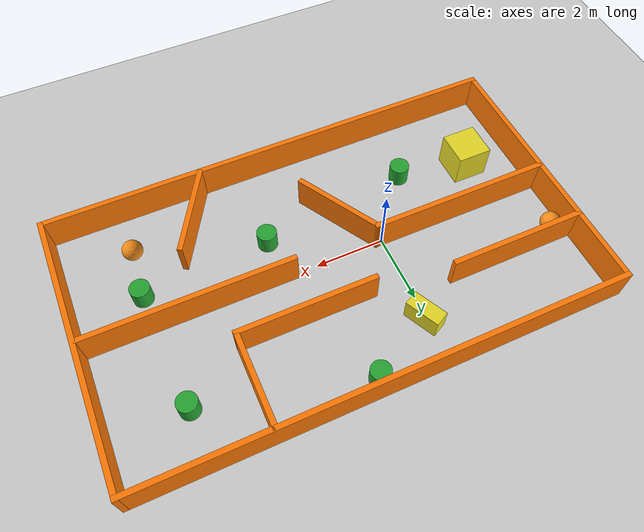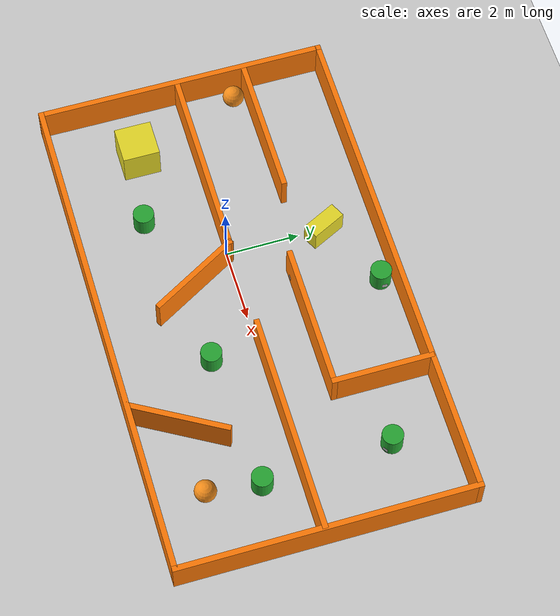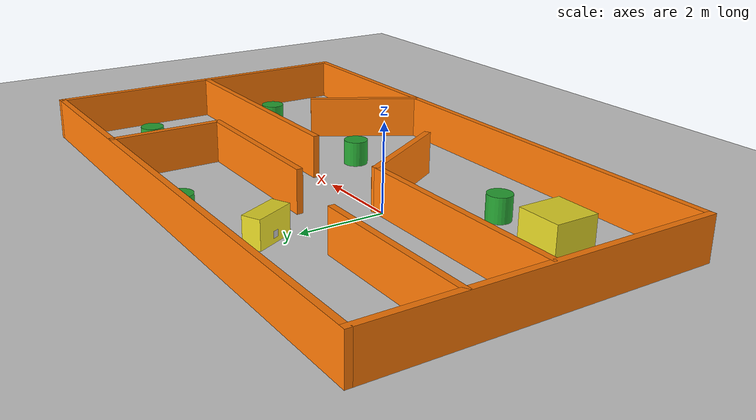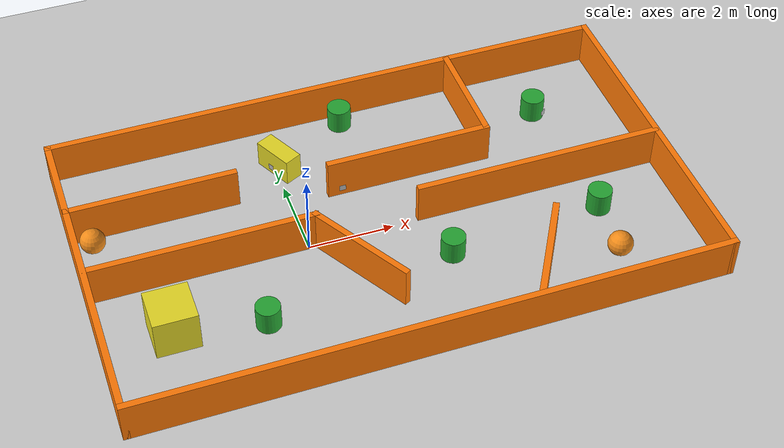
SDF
<sdf version="1.6">
 <world name="default">
  <light name="sun" type="directional">
   <pose>0 0 10 0 -0 0</pose>
   <diffuse>0.8 0.8 0.8 1</diffuse>
   <specular>0.2 0.2 0.2 1</specular>
   <attenuation>
    <range>1000</range>
    <constant>0.9</constant>
    <linear>0.01</linear>
    <quadratic>0.001</quadratic>
   </attenuation>
   <direction>-0.5 0.1 -0.9</direction>
  </light>
  <model name="ground_plane">
   <static>1</static>
   <link name="link">
    <collision name="collision">
     <geometry><plane><normal>0 0 1</normal><size>100 100</size></plane></geometry>
     <surface><friction><ode><mu>100</mu><mu2>50</mu2></ode></friction></surface>
    </collision>
    <visual name="visual">
     <cast_shadows>0</cast_shadows>
     <geometry><plane><normal>0 0 1</normal><size>100 100</size></plane></geometry>
     <material>
      <script><uri>file://media/materials/scripts/gazebo.material</uri><name>Gazebo/Grey</name></script>
     </material>
    </visual>
   </link>
  </model>
  <gravity>0 0 -9.8</gravity>
  <magnetic_field>6e-06 2.3e-05 -4.2e-05</magnetic_field>
  <atmosphere type="adiabatic"/>
  <physics name="default_physics" default="0" type="ode">
   <max_step_size>0.001</max_step_size>
   <real_time_factor>1</real_time_factor>
   <real_time_update_rate>1000</real_time_update_rate>
  </physics>
  <scene><ambient>0.4 0.4 0.4 1</ambient><background>0.7 0.7 0.7 1</background><shadows>1</shadows></scene>
  <spherical_coordinates>
   <surface_model>EARTH_WGS84</surface_model>
   <latitude_deg>0</latitude_deg>
   <longitude_deg>0</longitude_deg>
   <elevation>0</elevation>
   <heading_deg>0</heading_deg>
  </spherical_coordinates>
  <model name="final_maze">
   <pose>1.767 0.166 0 0 -0 0</pose>
   <link name="Wall_0">
    <collision name="Wall_0_Collision">
     <geometry><box><size>8 0.15 1</size></box></geometry>
     <pose>0 0 0.5 0 -0 0</pose>
    </collision>
    <visual name="Wall_0_Visual">
     <pose>0 0 0.5 0 -0 0</pose>
     <geometry><box><size>8 0.15 1</size></box></geometry>
     <material>
      <script><uri>file://media/materials/scripts/gazebo.material</uri><name>Gazebo/Grey</name></script>
      <ambient>0.996078 0.47451 0.0196078 1</ambient>
     </material>
     <meta><layer>0</layer></meta>
    </visual>
    <pose>-6.8 0 0 0 -0 -1.5708</pose>
   </link>
   <link name="Wall_10">
    <collision name="Wall_10_Collision">
     <geometry><box><size>6 0.15 1</size></box></geometry>
     <pose>0 0 0.5 0 -0 0</pose>
    </collision>
    <visual name="Wall_10_Visual">
     <pose>0 0 0.5 0 -0 0</pose>
     <geometry><box><size>6 0.15 1</size></box></geometry>
     <material>
      <script><uri>file://media/materials/scripts/gazebo.material</uri><name>Gazebo/Grey</name></script>
      <ambient>0.996078 0.47451 0.0196078 1</ambient>
     </material>
     <meta><layer>0</layer></meta>
    </visual>
    <pose>3.835 -0.107 0 0 -0 0</pose>
   </link>
   <link name="Wall_12">
    <collision name="Wall_12_Collision">
     <geometry><box><size>2.75 0.15 1</size></box></geometry>
     <pose>0 0 0.5 0 -0 0</pose>
    </collision>
    <visual name="Wall_12_Visual">
     <pose>0 0 0.5 0 -0 0</pose>
     <geometry><box><size>2.75 0.15 1</size></box></geometry>
     <material>
      <script><uri>file://media/materials/scripts/gazebo.material</uri><name>Gazebo/Grey</name></script>
      <ambient>0.996078 0.47451 0.0196078 1</ambient>
     </material>
     <meta><layer>0</layer></meta>
    </visual>
    <pose>-0.92 -1.257 0 0 -0 -1.04726</pose>
   </link>
   <link name="Wall_14">
    <collision name="Wall_14_Collision">
     <geometry><box><size>2.75 0.15 1</size></box></geometry>
     <pose>0 0 0.5 0 -0 0</pose>
    </collision>
    <visual name="Wall_14_Visual">
     <pose>0 0 0.5 0 -0 0</pose>
     <geometry><box><size>2.75 0.15 1</size></box></geometry>
     <material>
      <script><uri>file://media/materials/scripts/gazebo.material</uri><name>Gazebo/Grey</name></script>
      <ambient>0.996078 0.47451 0.0196078 1</ambient>
     </material>
     <meta><layer>0</layer></meta>
    </visual>
    <pose>3.062 2.596 0 0 -0 -1.5708</pose>
   </link>
   <link name="Wall_16">
    <collision name="Wall_16_Collision">
     <geometry><box><size>4 0.15 1</size></box></geometry>
     <pose>0 0 0.5 0 -0 0</pose>
    </collision>
    <visual name="Wall_16_Visual">
     <pose>0 0 0.5 0 -0 0</pose>
     <geometry><box><size>4 0.15 1</size></box></geometry>
     <material>
      <script><uri>file://media/materials/scripts/gazebo.material</uri><name>Gazebo/Grey</name></script>
      <ambient>0.996078 0.47451 0.0196078 1</ambient>
     </material>
     <meta><layer>0</layer></meta>
    </visual>
    <pose>-4.862 1.764 0 0 -0 0</pose>
   </link>
   <link name="Wall_19">
    <collision name="Wall_19_Collision">
     <geometry><box><size>2.75 0.15 1</size></box></geometry>
     <pose>0 0 0.5 0 -0 0</pose>
    </collision>
    <visual name="Wall_19_Visual">
     <pose>0 0 0.5 0 -0 0</pose>
     <geometry><box><size>2.75 0.15 1</size></box></geometry>
     <material>
      <script><uri>file://media/materials/scripts/gazebo.material</uri><name>Gazebo/Grey</name></script>
      <ambient>0.996078 0.47451 0.0196078 1</ambient>
     </material>
     <meta><layer>0</layer></meta>
    </visual>
    <pose>2.908 -2.76468 0 0 -0 1.0472</pose>
   </link>
   <link name="Wall_23">
    <collision name="Wall_23_Collision">
     <geometry><box><size>4 0.15 1</size></box></geometry>
     <pose>0 0 0.5 0 -0 0</pose>
    </collision>
    <visual name="Wall_23_Visual">
     <pose>0 0 0.5 0 -0 0</pose>
     <geometry><box><size>4 0.15 1</size></box></geometry>
     <material>
      <script><uri>file://media/materials/scripts/gazebo.material</uri><name>Gazebo/Grey</name></script>
      <ambient>0.996078 0.47451 0.0196078 1</ambient>
     </material>
     <meta><layer>0</layer></meta>
    </visual>
    <pose>1.137 1.296 0 0 -0 3.14159</pose>
   </link>
   <link name="Wall_3">
    <collision name="Wall_3_Collision">
     <geometry><box><size>13.75 0.15 1</size></box></geometry>
     <pose>0 0 0.5 0 -0 0</pose>
    </collision>
    <visual name="Wall_3_Visual">
     <pose>0 0 0.5 0 -0 0</pose>
     <geometry><box><size>13.75 0.15 1</size></box></geometry>
     <material>
      <script><uri>file://media/materials/scripts/gazebo.material</uri><name>Gazebo/Grey</name></script>
      <ambient>0.996078 0.47451 0.0196078 1</ambient>
     </material>
     <meta><layer>0</layer></meta>
    </visual>
    <pose>-0 -3.925 0 0 -0 0</pose>
   </link>
   <link name="Wall_5">
    <collision name="Wall_5_Collision">
     <geometry><box><size>8 0.15 1</size></box></geometry>
     <pose>0 0 0.5 0 -0 0</pose>
    </collision>
    <visual name="Wall_5_Visual">
     <pose>0 0 0.5 0 -0 0</pose>
     <geometry><box><size>8 0.15 1</size></box></geometry>
     <material>
      <script><uri>file://media/materials/scripts/gazebo.material</uri><name>Gazebo/Grey</name></script>
      <ambient>0.996078 0.47451 0.0196078 1</ambient>
     </material>
     <meta><layer>0</layer></meta>
    </visual>
    <pose>6.8 0 0 0 -0 1.5708</pose>
   </link>
   <link name="Wall_6">
    <collision name="Wall_6_Collision">
     <geometry><box><size>13.75 0.15 1</size></box></geometry>
     <pose>0 0 0.5 0 -0 0</pose>
    </collision>
    <visual name="Wall_6_Visual">
     <pose>0 0 0.5 0 -0 0</pose>
     <geometry><box><size>13.75 0.15 1</size></box></geometry>
     <material>
      <script><uri>file://media/materials/scripts/gazebo.material</uri><name>Gazebo/Grey</name></script>
      <ambient>0.996078 0.47451 0.0196078 1</ambient>
     </material>
     <meta><layer>0</layer></meta>
    </visual>
    <pose>-0 3.925 0 0 -0 3.14159</pose>
   </link>
   <link name="Wall_8">
    <collision name="Wall_8_Collision">
     <geometry><box><size>5.32209 0.15 1</size></box></geometry>
     <pose>0 0 0.5 0 -0 0</pose>
    </collision>
    <visual name="Wall_8_Visual">
     <pose>0 0 0.5 0 -0 0</pose>
     <geometry><box><size>5.32209 0.15 1</size></box></geometry>
     <material>
      <script><uri>file://media/materials/scripts/gazebo.material</uri><name>Gazebo/Grey</name></script>
      <ambient>0.996078 0.47451 0.0196078 1</ambient>
     </material>
     <meta><layer>0</layer></meta>
    </visual>
    <pose>-4.156 -0.129 0 0 -0 -0.000773</pose>
   </link>
   <static>1</static>
  </model>
  <model name="unit_cylinder">
   <link name="link">
    <inertial>
     <mass>1</mass>
     <inertia><ixx>0.145833</ixx><ixy>0</ixy><ixz>0</ixz><iyy>0.145833</iyy><iyz>0</iyz><izz>0.125</izz></inertia>
    </inertial>
    <visual name="visual">
     <geometry><cylinder><radius>0.282119</radius><length>0.585064</length></cylinder></geometry>
     <material>
      <script><name>Gazebo/Green</name><uri>file://media/materials/scripts/gazebo.material</uri></script>
      <shader type="pixel"><normal_map>__default__</normal_map></shader>
      <ambient>0 1 0 1</ambient>
      <diffuse>0 1 0 1</diffuse>
      <specular>0.1 0.1 0.1 1</specular>
      <emissive>0 0 0 1</emissive>
     </material>
    </visual>
    <collision name="collision">
     <geometry><cylinder><radius>0.282119</radius><length>0.585064</length></cylinder></geometry>
     <surface>
      <friction>
       <ode><mu>1</mu><mu2>1</mu2><fdir1>0 0 0</fdir1><slip1>0</slip1><slip2>0</slip2></ode>
       <torsional>
        <coefficient>1</coefficient>
        <patch_radius>0</patch_radius>
        <surface_radius>0</surface_radius>
        <use_patch_radius>1</use_patch_radius>
        <ode><slip>0</slip></ode>
       </torsional>
      </friction>
      <bounce><restitution_coefficient>0</restitution_coefficient><threshold>1e+06</threshold></bounce>
      <contact>
       <collide_without_contact>0</collide_without_contact>
       <collide_without_contact_bitmask>1</collide_without_contact_bitmask>
       <collide_bitmask>1</collide_bitmask>
       <ode>
        <soft_cfm>0</soft_cfm>
        <soft_erp>0.2</soft_erp>
        <kp>1e+13</kp>
        <kd>1</kd>
        <max_vel>0.01</max_vel>
        <min_depth>0</min_depth>
       </ode>
       <bullet>
        <split_impulse>1</split_impulse>
        <split_impulse_penetration_threshold>-0.01</split_impulse_penetration_threshold>
        <soft_cfm>0</soft_cfm>
        <soft_erp>0.2</soft_erp>
        <kp>1e+13</kp>
        <kd>1</kd>
       </bullet>
      </contact>
     </surface>
    </collision>
   </link>
   <static>0</static>
   <pose>1.9138 3.68755 0.292529 1e-06 1e-06 0</pose>
  </model>
  <model name="unit_cylinder_clone">
   <link name="link">
    <inertial>
     <mass>1</mass>
     <inertia><ixx>0.145833</ixx><ixy>0</ixy><ixz>0</ixz><iyy>0.145833</iyy><iyz>0</iyz><izz>0.125</izz></inertia>
    </inertial>
    <visual name="visual">
     <geometry><cylinder><radius>0.282119</radius><length>0.585064</length></cylinder></geometry>
     <material>
      <script><name>Gazebo/Green</name><uri>file://media/materials/scripts/gazebo.material</uri></script>
      <shader type="pixel"><normal_map>__default__</normal_map></shader>
      <ambient>0 1 0 1</ambient>
      <diffuse>0 1 0 1</diffuse>
      <specular>0.1 0.1 0.1 1</specular>
      <emissive>0 0 0 1</emissive>
     </material>
    </visual>
    <collision name="collision">
     <geometry><cylinder><radius>0.282119</radius><length>0.585064</length></cylinder></geometry>
     <surface>
      <friction>
       <ode><mu>1</mu><mu2>1</mu2><fdir1>0 0 0</fdir1><slip1>0</slip1><slip2>0</slip2></ode>
       <torsional>
        <coefficient>1</coefficient>
        <patch_radius>0</patch_radius>
        <surface_radius>0</surface_radius>
        <use_patch_radius>1</use_patch_radius>
        <ode><slip>0</slip></ode>
       </torsional>
      </friction>
      <bounce><restitution_coefficient>0</restitution_coefficient><threshold>1e+06</threshold></bounce>
      <contact>
       <collide_without_contact>0</collide_without_contact>
       <collide_without_contact_bitmask>1</collide_without_contact_bitmask>
       <collide_bitmask>1</collide_bitmask>
       <ode>
        <soft_cfm>0</soft_cfm>
        <soft_erp>0.2</soft_erp>
        <kp>1e+13</kp>
        <kd>1</kd>
        <max_vel>0.01</max_vel>
        <min_depth>0</min_depth>
       </ode>
       <bullet>
        <split_impulse>1</split_impulse>
        <split_impulse_penetration_threshold>-0.01</split_impulse_penetration_threshold>
        <soft_cfm>0</soft_cfm>
        <soft_erp>0.2</soft_erp>
        <kp>1e+13</kp>
        <kd>1</kd>
       </bullet>
      </contact>
     </surface>
    </collision>
   </link>
   <static>0</static>
   <pose>-1.48985 -1.86437 0.292529 1e-06 1e-06 0</pose>
  </model>
  <model name="unit_cylinder_clone_1">
   <link name="link">
    <inertial>
     <mass>1</mass>
     <inertia><ixx>0.145833</ixx><ixy>0</ixy><ixz>0</ixz><iyy>0.145833</iyy><iyz>0</iyz><izz>0.125</izz></inertia>
    </inertial>
    <visual name="visual">
     <geometry><cylinder><radius>0.282119</radius><length>0.585064</length></cylinder></geometry>
     <material>
      <script><name>Gazebo/Green</name><uri>file://media/materials/scripts/gazebo.material</uri></script>
      <shader type="pixel"><normal_map>__default__</normal_map></shader>
      <ambient>0 1 0 1</ambient>
      <diffuse>0 1 0 1</diffuse>
      <specular>0.1 0.1 0.1 1</specular>
      <emissive>0 0 0 1</emissive>
     </material>
    </visual>
    <collision name="collision">
     <geometry><cylinder><radius>0.282119</radius><length>0.585064</length></cylinder></geometry>
     <surface>
      <friction>
       <ode><mu>1</mu><mu2>1</mu2><fdir1>0 0 0</fdir1><slip1>0</slip1><slip2>0</slip2></ode>
       <torsional>
        <coefficient>1</coefficient>
        <patch_radius>0</patch_radius>
        <surface_radius>0</surface_radius>
        <use_patch_radius>1</use_patch_radius>
        <ode><slip>0</slip></ode>
       </torsional>
      </friction>
      <bounce><restitution_coefficient>0</restitution_coefficient><threshold>1e+06</threshold></bounce>
      <contact>
       <collide_without_contact>0</collide_without_contact>
       <collide_without_contact_bitmask>1</collide_without_contact_bitmask>
       <collide_bitmask>1</collide_bitmask>
       <ode>
        <soft_cfm>0</soft_cfm>
        <soft_erp>0.2</soft_erp>
        <kp>1e+13</kp>
        <kd>1</kd>
        <max_vel>0.01</max_vel>
        <min_depth>0</min_depth>
       </ode>
       <bullet>
        <split_impulse>1</split_impulse>
        <split_impulse_penetration_threshold>-0.01</split_impulse_penetration_threshold>
        <soft_cfm>0</soft_cfm>
        <soft_erp>0.2</soft_erp>
        <kp>1e+13</kp>
        <kd>1</kd>
       </bullet>
      </contact>
     </surface>
    </collision>
   </link>
   <static>0</static>
   <pose>6.68011 -0.986426 0.292525 -1e-06 -1e-06 0</pose>
  </model>
  <model name="unit_cylinder_clone_2">
   <link name="link">
    <inertial>
     <mass>1</mass>
     <inertia><ixx>0.145833</ixx><ixy>0</ixy><ixz>0</ixz><iyy>0.145833</iyy><iyz>0</iyz><izz>0.125</izz></inertia>
    </inertial>
    <visual name="visual">
     <geometry><cylinder><radius>0.282119</radius><length>0.585064</length></cylinder></geometry>
     <material>
      <script><name>Gazebo/Green</name><uri>file://media/materials/scripts/gazebo.material</uri></script>
      <shader type="pixel"><normal_map>__default__</normal_map></shader>
      <ambient>0 1 0 1</ambient>
      <diffuse>0 1 0 1</diffuse>
      <specular>0.1 0.1 0.1 1</specular>
      <emissive>0 0 0 1</emissive>
     </material>
    </visual>
    <collision name="collision">
     <geometry><cylinder><radius>0.282119</radius><length>0.585064</length></cylinder></geometry>
     <surface>
      <friction>
       <ode><mu>1</mu><mu2>1</mu2><fdir1>0 0 0</fdir1><slip1>0</slip1><slip2>0</slip2></ode>
       <torsional>
        <coefficient>1</coefficient>
        <patch_radius>0</patch_radius>
        <surface_radius>0</surface_radius>
        <use_patch_radius>1</use_patch_radius>
        <ode><slip>0</slip></ode>
       </torsional>
      </friction>
      <bounce><restitution_coefficient>0</restitution_coefficient><threshold>1e+06</threshold></bounce>
      <contact>
       <collide_without_contact>0</collide_without_contact>
       <collide_without_contact_bitmask>1</collide_without_contact_bitmask>
       <collide_bitmask>1</collide_bitmask>
       <ode>
        <soft_cfm>0</soft_cfm>
        <soft_erp>0.2</soft_erp>
        <kp>1e+13</kp>
        <kd>1</kd>
        <max_vel>0.01</max_vel>
        <min_depth>0</min_depth>
       </ode>
       <bullet>
        <split_impulse>1</split_impulse>
        <split_impulse_penetration_threshold>-0.01</split_impulse_penetration_threshold>
        <soft_cfm>0</soft_cfm>
        <soft_erp>0.2</soft_erp>
        <kp>1e+13</kp>
        <kd>1</kd>
       </bullet>
      </contact>
     </surface>
    </collision>
   </link>
   <static>0</static>
   <pose>6.50384 2.50044 0.292525 -1e-06 -1e-06 0</pose>
  </model>
  <model name="unit_cylinder_clone_3">
   <link name="link">
    <inertial>
     <mass>1</mass>
     <inertia><ixx>0.145833</ixx><ixy>0</ixy><ixz>0</ixz><iyy>0.145833</iyy><iyz>0</iyz><izz>0.125</izz></inertia>
    </inertial>
    <visual name="visual">
     <geometry><cylinder><radius>0.282119</radius><length>0.585064</length></cylinder></geometry>
     <material>
      <script><name>Gazebo/Green</name><uri>file://media/materials/scripts/gazebo.material</uri></script>
      <shader type="pixel"><normal_map>__default__</normal_map></shader>
      <ambient>0 1 0 1</ambient>
      <diffuse>0 1 0 1</diffuse>
      <specular>0.1 0.1 0.1 1</specular>
      <emissive>0 0 0 1</emissive>
     </material>
    </visual>
    <collision name="collision">
     <geometry><cylinder><radius>0.282119</radius><length>0.585064</length></cylinder></geometry>
     <surface>
      <friction>
       <ode><mu>1</mu><mu2>1</mu2><fdir1>0 0 0</fdir1><slip1>0</slip1><slip2>0</slip2></ode>
       <torsional>
        <coefficient>1</coefficient>
        <patch_radius>0</patch_radius>
        <surface_radius>0</surface_radius>
        <use_patch_radius>1</use_patch_radius>
        <ode><slip>0</slip></ode>
       </torsional>
      </friction>
      <bounce><restitution_coefficient>0</restitution_coefficient><threshold>1e+06</threshold></bounce>
      <contact>
       <collide_without_contact>0</collide_without_contact>
       <collide_without_contact_bitmask>1</collide_without_contact_bitmask>
       <collide_bitmask>1</collide_bitmask>
       <ode>
        <soft_cfm>0</soft_cfm>
        <soft_erp>0.2</soft_erp>
        <kp>1e+13</kp>
        <kd>1</kd>
        <max_vel>0.01</max_vel>
        <min_depth>0</min_depth>
       </ode>
       <bullet>
        <split_impulse>1</split_impulse>
        <split_impulse_penetration_threshold>-0.01</split_impulse_penetration_threshold>
        <soft_cfm>0</soft_cfm>
        <soft_erp>0.2</soft_erp>
        <kp>1e+13</kp>
        <kd>1</kd>
       </bullet>
      </contact>
     </surface>
    </collision>
   </link>
   <static>0</static>
   <pose>2.97756 -1.25738 0.292525 -1e-06 -1e-06 0</pose>
  </model>
  <model name="aruco_marker_0">
   <static>0</static>
   <link name="link">
    <gravity>0</gravity>
    <inertial>
     <mass>0.001</mass>
     <inertia>
      <ixx>3.75e-06</ixx>
      <ixy>0</ixy>
      <ixz>0</ixz>
      <iyy>1.875e-06</iyy>
      <iyz>0</iyz>
      <izz>1.875e-06</izz>
     </inertia>
    </inertial>
    <visual name="front_visual">
     <pose>5e-05 0 0 0 -0 0</pose>
     <geometry><box><size>0.0001 0.15 0.15</size></box></geometry>
     <material>
      <script>
       <uri>model://aruco_marker_0/materials/scripts</uri>
       <uri>model://aruco_marker_0/materials/textures</uri>
       <name>aruco_marker_0</name>
      </script>
     </material>
    </visual>
    <visual name="rear_visual">
     <pose>-5e-05 0 0 0 -0 0</pose>
     <geometry><box><size>0.0001 0.15 0.15</size></box></geometry>
    </visual>
    <collision name="collision"><geometry><box><size>0.0001 0.15 0.15</size></box></geometry></collision>
   </link>
   <pose>6.693958 2.258039 0.2 0 0 -0.962699</pose>
  </model>
  <model name="aruco_marker_1">
   <static>0</static>
   <link name="link">
    <gravity>0</gravity>
    <inertial>
     <mass>0.001</mass>
     <inertia>
      <ixx>3.75e-06</ixx>
      <ixy>0</ixy>
      <ixz>0</ixz>
      <iyy>1.875e-06</iyy>
      <iyz>0</iyz>
      <izz>1.875e-06</izz>
     </inertia>
    </inertial>
    <visual name="front_visual">
     <pose>5e-05 0 0 0 -0 0</pose>
     <geometry><box><size>0.0001 0.15 0.15</size></box></geometry>
     <material>
      <script>
       <uri>model://aruco_marker_1/materials/scripts</uri>
       <uri>model://aruco_marker_1/materials/textures</uri>
       <name>aruco_marker_1</name>
      </script>
     </material>
    </visual>
    <visual name="rear_visual">
     <pose>-5e-05 0 0 0 -0 0</pose>
     <geometry><box><size>0.0001 0.15 0.15</size></box></geometry>
    </visual>
    <collision name="collision"><geometry><box><size>0.0001 0.15 0.15</size></box></geometry></collision>
   </link>
   <pose>1.252212 1.382652 0.2 0 0 -1.57</pose>
  </model>
  <model name="aruco_marker_2">
   <static>0</static>
   <link name="link">
    <gravity>0</gravity>
    <inertial>
     <mass>0.001</mass>
     <inertia>
      <ixx>3.75e-06</ixx>
      <ixy>0</ixy>
      <ixz>0</ixz>
      <iyy>1.875e-06</iyy>
      <iyz>0</iyz>
      <izz>1.875e-06</izz>
     </inertia>
    </inertial>
    <visual name="front_visual">
     <pose>5e-05 0 0 0 -0 0</pose>
     <geometry><box><size>0.0001 0.15 0.15</size></box></geometry>
     <material>
      <script>
       <uri>model://aruco_marker_2/materials/scripts</uri>
       <uri>model://aruco_marker_2/materials/textures</uri>
       <name>aruco_marker_2</name>
      </script>
     </material>
    </visual>
    <visual name="rear_visual">
     <pose>-5e-05 0 0 0 -0 0</pose>
     <geometry><box><size>0.0001 0.15 0.15</size></box></geometry>
    </visual>
    <collision name="collision"><geometry><box><size>0.0001 0.15 0.15</size></box></geometry></collision>
   </link>
   <pose>2.207535 3.717063 0.2 0 -0 -0.024565</pose>
  </model>
  <model name="aruco_marker_3">
   <static>0</static>
   <link name="link">
    <gravity>0</gravity>
    <inertial>
     <mass>0.001</mass>
     <inertia>
      <ixx>3.75e-06</ixx>
      <ixy>0</ixy>
      <ixz>0</ixz>
      <iyy>1.875e-06</iyy>
      <iyz>0</iyz>
      <izz>1.875e-06</izz>
     </inertia>
    </inertial>
    <visual name="front_visual">
     <pose>5e-05 0 0 0 -0 0</pose>
     <geometry><box><size>0.0001 0.15 0.15</size></box></geometry>
     <material>
      <script>
       <uri>model://aruco_marker_3/materials/scripts</uri>
       <uri>model://aruco_marker_3/materials/textures</uri>
       <name>aruco_marker_3</name>
      </script>
     </material>
    </visual>
    <visual name="rear_visual">
     <pose>-5e-05 0 0 0 -0 0</pose>
     <geometry><box><size>0.0001 0.15 0.15</size></box></geometry>
    </visual>
    <collision name="collision"><geometry><box><size>0.0001 0.15 0.15</size></box></geometry></collision>
   </link>
   <pose>-0.131209 2.594035 0.2 0 -0 -2.681639</pose>
  </model>
  <model name="unit_box">
   <link name="link">
    <inertial>
     <mass>1</mass>
     <inertia>
      <ixx>0.166667</ixx>
      <ixy>0</ixy>
      <ixz>0</ixz>
      <iyy>0.166667</iyy>
      <iyz>0</iyz>
      <izz>0.166667</izz>
     </inertia>
    </inertial>
    <visual name="visual">
     <geometry><box><size>1 1 1</size></box></geometry>
     <material>
      <script><name>Gazebo/Yellow</name><uri>file://media/materials/scripts/gazebo.material</uri></script>
      <shader type="pixel"><normal_map>__default__</normal_map></shader>
      <ambient>1 1 0 1</ambient>
      <diffuse>1 1 0 1</diffuse>
      <emissive>0 0 0 1</emissive>
     </material>
    </visual>
    <collision name="collision">
     <geometry><box><size>1 1 1</size></box></geometry>
     <surface>
      <friction>
       <ode><mu>1</mu><mu2>1</mu2><fdir1>0 0 0</fdir1><slip1>0</slip1><slip2>0</slip2></ode>
       <torsional>
        <coefficient>1</coefficient>
        <patch_radius>0</patch_radius>
        <surface_radius>0</surface_radius>
        <use_patch_radius>1</use_patch_radius>
        <ode><slip>0</slip></ode>
       </torsional>
      </friction>
      <bounce><restitution_coefficient>0</restitution_coefficient><threshold>1e+06</threshold></bounce>
      <contact>
       <collide_without_contact>0</collide_without_contact>
       <collide_without_contact_bitmask>1</collide_without_contact_bitmask>
       <collide_bitmask>1</collide_bitmask>
       <ode>
        <soft_cfm>0</soft_cfm>
        <soft_erp>0.2</soft_erp>
        <kp>1e+13</kp>
        <kd>1</kd>
        <max_vel>0.01</max_vel>
        <min_depth>0</min_depth>
       </ode>
       <bullet>
        <split_impulse>1</split_impulse>
        <split_impulse_penetration_threshold>-0.01</split_impulse_penetration_threshold>
        <soft_cfm>0</soft_cfm>
        <soft_erp>0.2</soft_erp>
        <kp>1e+13</kp>
        <kd>1</kd>
       </bullet>
      </contact>
     </surface>
    </collision>
   </link>
   <static>0</static>
   <pose>-3.48746 -1.49432 0.5 -0 -0 -0</pose>
  </model>
  <model name="unit_box_clone">
   <link name="link">
    <inertial>
     <mass>1</mass>
     <inertia>
      <ixx>0.166667</ixx>
      <ixy>0</ixy>
      <ixz>0</ixz>
      <iyy>0.166667</iyy>
      <iyz>0</iyz>
      <izz>0.166667</izz>
     </inertia>
    </inertial>
    <visual name="visual">
     <geometry><box><size>1 0.436961 0.656537</size></box></geometry>
     <material>
      <script><name>Gazebo/Yellow</name><uri>file://media/materials/scripts/gazebo.material</uri></script>
      <shader type="pixel"><normal_map>__default__</normal_map></shader>
      <ambient>1 1 0 1</ambient>
      <diffuse>1 1 0 1</diffuse>
      <emissive>0 0 0 1</emissive>
     </material>
    </visual>
    <collision name="collision">
     <geometry><box><size>1 0.436961 0.656537</size></box></geometry>
     <surface>
      <friction>
       <ode><mu>1</mu><mu2>1</mu2><fdir1>0 0 0</fdir1><slip1>0</slip1><slip2>0</slip2></ode>
       <torsional>
        <coefficient>1</coefficient>
        <patch_radius>0</patch_radius>
        <surface_radius>0</surface_radius>
        <use_patch_radius>1</use_patch_radius>
        <ode><slip>0</slip></ode>
       </torsional>
      </friction>
      <bounce><restitution_coefficient>0</restitution_coefficient><threshold>1e+06</threshold></bounce>
      <contact>
       <collide_without_contact>0</collide_without_contact>
       <collide_without_contact_bitmask>1</collide_without_contact_bitmask>
       <collide_bitmask>1</collide_bitmask>
       <ode>
        <soft_cfm>0</soft_cfm>
        <soft_erp>0.2</soft_erp>
        <kp>1e+13</kp>
        <kd>1</kd>
        <max_vel>0.01</max_vel>
        <min_depth>0</min_depth>
       </ode>
       <bullet>
        <split_impulse>1</split_impulse>
        <split_impulse_penetration_threshold>-0.01</split_impulse_penetration_threshold>
        <soft_cfm>0</soft_cfm>
        <soft_erp>0.2</soft_erp>
        <kp>1e+13</kp>
        <kd>1</kd>
       </bullet>
      </contact>
     </surface>
    </collision>
   </link>
   <static>0</static>
   <pose>0.099379 2.67313 0.328268 0 -0 2.03126</pose>
  </model>
  <model name="unit_sphere">
   <link name="link">
    <inertial>
     <mass>1</mass>
     <inertia><ixx>0.1</ixx><ixy>0</ixy><ixz>0</ixz><iyy>0.1</iyy><iyz>0</iyz><izz>0.1</izz></inertia>
    </inertial>
    <visual name="visual">
     <geometry><sphere><radius>0.291395</radius></sphere></geometry>
     <material>
      <script><name>Gazebo/Orange</name><uri>file://media/materials/scripts/gazebo.material</uri></script>
      <shader type="pixel"><normal_map>__default__</normal_map></shader>
      <ambient>1 0.509 0.047 1</ambient>
      <diffuse>1 0.509 0.047 1</diffuse>
      <specular>0.5 0.5 0.5 1</specular>
      <emissive>0 0 0 1</emissive>
     </material>
    </visual>
    <collision name="collision">
     <geometry><sphere><radius>0.291395</radius></sphere></geometry>
     <surface>
      <friction>
       <ode><mu>1</mu><mu2>1</mu2><fdir1>0 0 0</fdir1><slip1>0</slip1><slip2>0</slip2></ode>
       <torsional>
        <coefficient>1</coefficient>
        <patch_radius>0</patch_radius>
        <surface_radius>0</surface_radius>
        <use_patch_radius>1</use_patch_radius>
        <ode><slip>0</slip></ode>
       </torsional>
      </friction>
      <bounce><restitution_coefficient>0</restitution_coefficient><threshold>1e+06</threshold></bounce>
      <contact>
       <collide_without_contact>0</collide_without_contact>
       <collide_without_contact_bitmask>1</collide_without_contact_bitmask>
       <collide_bitmask>1</collide_bitmask>
       <ode>
        <soft_cfm>0</soft_cfm>
        <soft_erp>0.2</soft_erp>
        <kp>1e+13</kp>
        <kd>1</kd>
        <max_vel>0.01</max_vel>
        <min_depth>0</min_depth>
       </ode>
       <bullet>
        <split_impulse>1</split_impulse>
        <split_impulse_penetration_threshold>-0.01</split_impulse_penetration_threshold>
        <soft_cfm>0</soft_cfm>
        <soft_erp>0.2</soft_erp>
        <kp>1e+13</kp>
        <kd>1</kd>
       </bullet>
      </contact>
     </surface>
    </collision>
   </link>
   <static>0</static>
   <pose>6.53534 -2.42522 0.291395 0 -0 0</pose>
  </model>
  <model name="unit_sphere_clone">
   <link name="link">
    <inertial>
     <mass>1</mass>
     <inertia><ixx>0.1</ixx><ixy>0</ixy><ixz>0</ixz><iyy>0.1</iyy><iyz>0</iyz><izz>0.1</izz></inertia>
    </inertial>
    <visual name="visual">
     <geometry><sphere><radius>0.291395</radius></sphere></geometry>
     <material>
      <script><name>Gazebo/Orange</name><uri>file://media/materials/scripts/gazebo.material</uri></script>
      <shader type="pixel"><normal_map>__default__</normal_map></shader>
      <ambient>1 0.509 0.047 1</ambient>
      <diffuse>1 0.509 0.047 1</diffuse>
      <specular>0.5 0.5 0.5 1</specular>
      <emissive>0 0 0 1</emissive>
     </material>
    </visual>
    <collision name="collision">
     <geometry><sphere><radius>0.291395</radius></sphere></geometry>
     <surface>
      <friction>
       <ode><mu>1</mu><mu2>1</mu2><fdir1>0 0 0</fdir1><slip1>0</slip1><slip2>0</slip2></ode>
       <torsional>
        <coefficient>1</coefficient>
        <patch_radius>0</patch_radius>
        <surface_radius>0</surface_radius>
        <use_patch_radius>1</use_patch_radius>
        <ode><slip>0</slip></ode>
       </torsional>
      </friction>
      <bounce><restitution_coefficient>0</restitution_coefficient><threshold>1e+06</threshold></bounce>
      <contact>
       <collide_without_contact>0</collide_without_contact>
       <collide_without_contact_bitmask>1</collide_without_contact_bitmask>
       <collide_bitmask>1</collide_bitmask>
       <ode>
        <soft_cfm>0</soft_cfm>
        <soft_erp>0.2</soft_erp>
        <kp>1e+13</kp>
        <kd>1</kd>
        <max_vel>0.01</max_vel>
        <min_depth>0</min_depth>
       </ode>
       <bullet>
        <split_impulse>1</split_impulse>
        <split_impulse_penetration_threshold>-0.01</split_impulse_penetration_threshold>
        <soft_cfm>0</soft_cfm>
        <soft_erp>0.2</soft_erp>
        <kp>1e+13</kp>
        <kd>1</kd>
       </bullet>
      </contact>
     </surface>
    </collision>
   </link>
   <static>0</static>
   <pose>-4.59295 1.52432 0.291395 0 -0 0</pose>
  </model>
 </world>
</sdf>
